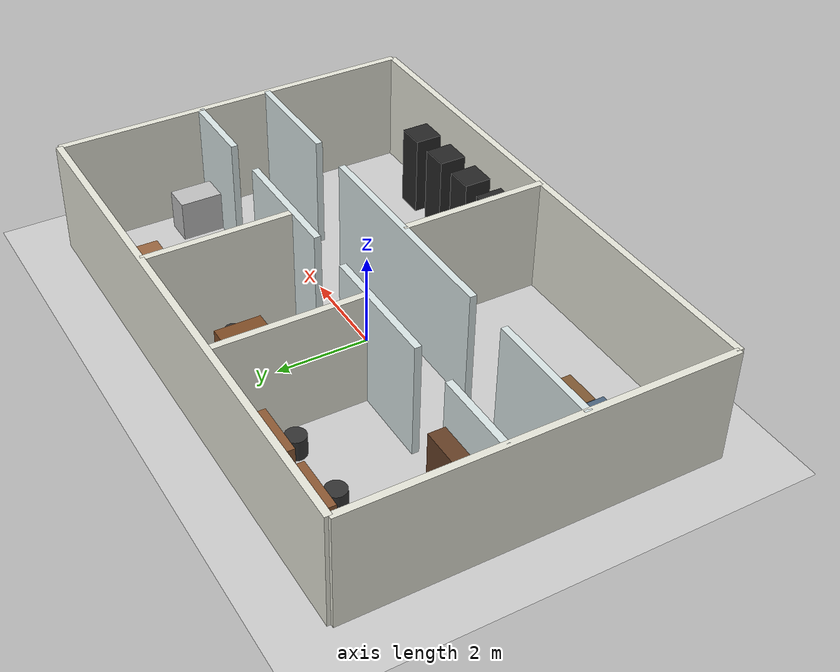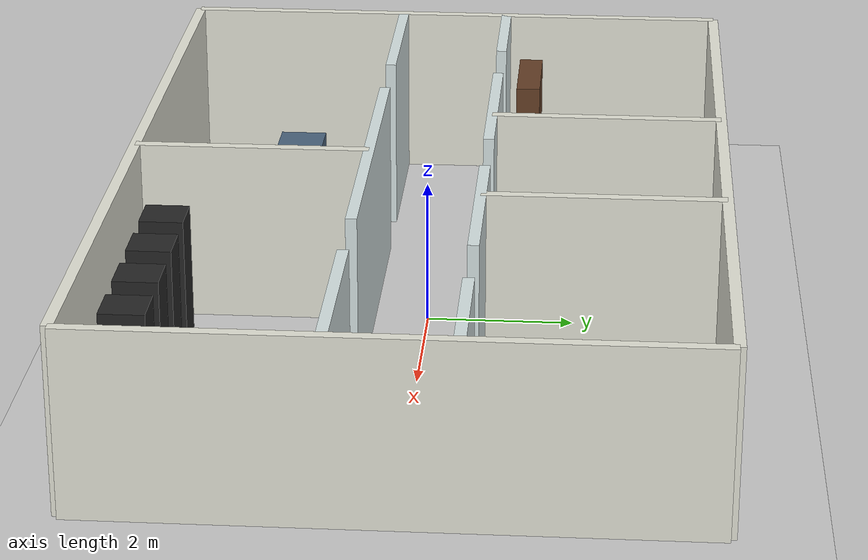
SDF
<?xml version="1.0"?>
<sdf version="1.9">
  <world name="office_world">

    <plugin filename="gz-sim-physics-system" name="gz::sim::systems::Physics"/>
    <plugin filename="gz-sim-user-commands-system" name="gz::sim::systems::UserCommands"/>
    <plugin filename="gz-sim-scene-broadcaster-system" name="gz::sim::systems::SceneBroadcaster"/>
    <plugin filename="gz-sim-sensors-system" name="gz::sim::systems::Sensors">
      <render_engine>ogre2</render_engine>
    </plugin>

    <light type="directional" name="sun">
      <cast_shadows>true</cast_shadows>
      <pose>0 0 10 0 0 0</pose>
      <diffuse>0.8 0.8 0.8 1</diffuse>
      <specular>0.2 0.2 0.2 1</specular>
      <attenuation>
        <range>1000</range>
        <constant>0.9</constant>
        <linear>0.01</linear>
        <quadratic>0.001</quadratic>
      </attenuation>
      <direction>-0.5 0.1 -0.9</direction>
    </light>

    <model name="ground_plane">
      <static>true</static>
      <link name="link">
        <collision name="collision">
          <geometry><plane><normal>0 0 1</normal><size>100 100</size></plane></geometry>
          <surface><friction><ode><mu>1.0</mu><mu2>1.0</mu2></ode></friction></surface>
        </collision>
        <visual name="visual">
          <geometry><plane><normal>0 0 1</normal><size>100 100</size></plane></geometry>
          <material><ambient>0.8 0.8 0.8 1</ambient><diffuse>0.8 0.8 0.8 1</diffuse></material>
        </visual>
      </link>
    </model>

    <!-- ===================== BUDYNEK: 12m x 8m ===================== -->
    <!-- Korytarz poziomy: y -0.8..0.8, x -6..6
         Północ (y 0.8..4): Open Space | Sala konferencyjna | Kuchnia
         Południe (y -4..-0.8): Pokój socjalny | Serwerownia -->
    <model name="walls">
      <static>true</static>

      <!-- Ściany zewnętrzne -->
      <link name="north_wall">
        <pose>0 4 1.25 0 0 0</pose>
        <collision name="collision"><geometry><box><size>12 0.15 2.5</size></box></geometry></collision>
        <visual name="visual"><geometry><box><size>12 0.15 2.5</size></box></geometry>
          <material><ambient>0.9 0.9 0.85 1</ambient><diffuse>0.9 0.9 0.85 1</diffuse></material></visual>
      </link>
      <link name="south_wall">
        <pose>0 -4 1.25 0 0 0</pose>
        <collision name="collision"><geometry><box><size>12 0.15 2.5</size></box></geometry></collision>
        <visual name="visual"><geometry><box><size>12 0.15 2.5</size></box></geometry>
          <material><ambient>0.9 0.9 0.85 1</ambient><diffuse>0.9 0.9 0.85 1</diffuse></material></visual>
      </link>
      <link name="west_wall">
        <pose>-6 0 1.25 0 0 1.5708</pose>
        <collision name="collision"><geometry><box><size>8 0.15 2.5</size></box></geometry></collision>
        <visual name="visual"><geometry><box><size>8 0.15 2.5</size></box></geometry>
          <material><ambient>0.9 0.9 0.85 1</ambient><diffuse>0.9 0.9 0.85 1</diffuse></material></visual>
      </link>
      <link name="east_wall">
        <pose>6 0 1.25 0 0 1.5708</pose>
        <collision name="collision"><geometry><box><size>8 0.15 2.5</size></box></geometry></collision>
        <visual name="visual"><geometry><box><size>8 0.15 2.5</size></box></geometry>
          <material><ambient>0.9 0.9 0.85 1</ambient><diffuse>0.9 0.9 0.85 1</diffuse></material></visual>
      </link>

      <!-- Ściana korytarza PÓŁNOC (y=0.8), z 3 drzwiami -->
      <link name="corridor_north_1">
        <pose>-5.125 0.8 1.25 0 0 0</pose>
        <collision name="collision"><geometry><box><size>1.75 0.15 2.5</size></box></geometry></collision>
        <visual name="visual"><geometry><box><size>1.75 0.15 2.5</size></box></geometry>
          <material><ambient>0.85 0.9 0.9 1</ambient><diffuse>0.85 0.9 0.9 1</diffuse></material></visual>
      </link>
      <link name="corridor_north_2">
        <pose>-1.875 0.8 1.25 0 0 0</pose>
        <collision name="collision"><geometry><box><size>2.75 0.15 2.5</size></box></geometry></collision>
        <visual name="visual"><geometry><box><size>2.75 0.15 2.5</size></box></geometry>
          <material><ambient>0.85 0.9 0.9 1</ambient><diffuse>0.85 0.9 0.9 1</diffuse></material></visual>
      </link>
      <link name="corridor_north_3">
        <pose>1.875 0.8 1.25 0 0 0</pose>
        <collision name="collision"><geometry><box><size>2.75 0.15 2.5</size></box></geometry></collision>
        <visual name="visual"><geometry><box><size>2.75 0.15 2.5</size></box></geometry>
          <material><ambient>0.85 0.9 0.9 1</ambient><diffuse>0.85 0.9 0.9 1</diffuse></material></visual>
      </link>
      <link name="corridor_north_4">
        <pose>5.125 0.8 1.25 0 0 0</pose>
        <collision name="collision"><geometry><box><size>1.75 0.15 2.5</size></box></geometry></collision>
        <visual name="visual"><geometry><box><size>1.75 0.15 2.5</size></box></geometry>
          <material><ambient>0.85 0.9 0.9 1</ambient><diffuse>0.85 0.9 0.9 1</diffuse></material></visual>
      </link>

      <!-- Ściana korytarza POŁUDNIE (y=-0.8), z 2 drzwiami -->
      <link name="corridor_south_1">
        <pose>-4.75 -0.8 1.25 0 0 0</pose>
        <collision name="collision"><geometry><box><size>2.5 0.15 2.5</size></box></geometry></collision>
        <visual name="visual"><geometry><box><size>2.5 0.15 2.5</size></box></geometry>
          <material><ambient>0.85 0.9 0.9 1</ambient><diffuse>0.85 0.9 0.9 1</diffuse></material></visual>
      </link>
      <link name="corridor_south_2">
        <pose>0 -0.8 1.25 0 0 0</pose>
        <collision name="collision"><geometry><box><size>5 0.15 2.5</size></box></geometry></collision>
        <visual name="visual"><geometry><box><size>5 0.15 2.5</size></box></geometry>
          <material><ambient>0.85 0.9 0.9 1</ambient><diffuse>0.85 0.9 0.9 1</diffuse></material></visual>
      </link>
      <link name="corridor_south_3">
        <pose>4.75 -0.8 1.25 0 0 0</pose>
        <collision name="collision"><geometry><box><size>2.5 0.15 2.5</size></box></geometry></collision>
        <visual name="visual"><geometry><box><size>2.5 0.15 2.5</size></box></geometry>
          <material><ambient>0.85 0.9 0.9 1</ambient><diffuse>0.85 0.9 0.9 1</diffuse></material></visual>
      </link>

      <!-- Ściany działowe między pomieszczeniami (strona północna) -->
      <link name="wall_office_meeting">
        <pose>-1.5 2.4 1.25 0 0 1.5708</pose>
        <collision name="collision"><geometry><box><size>3.2 0.15 2.5</size></box></geometry></collision>
        <visual name="visual"><geometry><box><size>3.2 0.15 2.5</size></box></geometry>
          <material><ambient>0.9 0.9 0.85 1</ambient><diffuse>0.9 0.9 0.85 1</diffuse></material></visual>
      </link>
      <link name="wall_meeting_kitchen">
        <pose>1.5 2.4 1.25 0 0 1.5708</pose>
        <collision name="collision"><geometry><box><size>3.2 0.15 2.5</size></box></geometry></collision>
        <visual name="visual"><geometry><box><size>3.2 0.15 2.5</size></box></geometry>
          <material><ambient>0.9 0.9 0.85 1</ambient><diffuse>0.9 0.9 0.85 1</diffuse></material></visual>
      </link>

      <!-- Ściana działowa strona południowa -->
      <link name="wall_break_server">
        <pose>0 -2.4 1.25 0 0 1.5708</pose>
        <collision name="collision"><geometry><box><size>3.2 0.15 2.5</size></box></geometry></collision>
        <visual name="visual"><geometry><box><size>3.2 0.15 2.5</size></box></geometry>
          <material><ambient>0.9 0.9 0.85 1</ambient><diffuse>0.9 0.9 0.85 1</diffuse></material></visual>
      </link>

    </model>

    <!-- ===================== OPEN SPACE (x -6..-1.5, y 0.8..4) ===================== -->
    <model name="desk_1"><static>true</static><pose>-5.3 3.3 0.375 0 0 0</pose>
      <link name="link"><collision name="collision"><geometry><box><size>1.2 0.6 0.75</size></box></geometry></collision>
        <visual name="visual"><geometry><box><size>1.2 0.6 0.75</size></box></geometry><material><ambient>0.55 0.35 0.2 1</ambient><diffuse>0.55 0.35 0.2 1</diffuse></material></visual></link>
    </model>
    <model name="chair_1"><static>true</static><pose>-5.3 2.7 0.225 0 0 0</pose>
      <link name="link"><collision name="collision"><geometry><cylinder><radius>0.22</radius><length>0.45</length></cylinder></geometry></collision>
        <visual name="visual"><geometry><cylinder><radius>0.22</radius><length>0.45</length></cylinder></geometry><material><ambient>0.2 0.2 0.2 1</ambient><diffuse>0.2 0.2 0.2 1</diffuse></material></visual></link>
    </model>
    <model name="desk_2"><static>true</static><pose>-3.75 3.3 0.375 0 0 0</pose>
      <link name="link"><collision name="collision"><geometry><box><size>1.2 0.6 0.75</size></box></geometry></collision>
        <visual name="visual"><geometry><box><size>1.2 0.6 0.75</size></box></geometry><material><ambient>0.55 0.35 0.2 1</ambient><diffuse>0.55 0.35 0.2 1</diffuse></material></visual></link>
    </model>
    <model name="chair_2"><static>true</static><pose>-3.75 2.7 0.225 0 0 0</pose>
      <link name="link"><collision name="collision"><geometry><cylinder><radius>0.22</radius><length>0.45</length></cylinder></geometry></collision>
        <visual name="visual"><geometry><cylinder><radius>0.22</radius><length>0.45</length></cylinder></geometry><material><ambient>0.2 0.2 0.2 1</ambient><diffuse>0.2 0.2 0.2 1</diffuse></material></visual></link>
    </model>
    <model name="desk_3"><static>true</static><pose>-2.2 3.3 0.375 0 0 0</pose>
      <link name="link"><collision name="collision"><geometry><box><size>1.2 0.6 0.75</size></box></geometry></collision>
        <visual name="visual"><geometry><box><size>1.2 0.6 0.75</size></box></geometry><material><ambient>0.55 0.35 0.2 1</ambient><diffuse>0.55 0.35 0.2 1</diffuse></material></visual></link>
    </model>
    <model name="chair_3"><static>true</static><pose>-2.2 2.7 0.225 0 0 0</pose>
      <link name="link"><collision name="collision"><geometry><cylinder><radius>0.22</radius><length>0.45</length></cylinder></geometry></collision>
        <visual name="visual"><geometry><cylinder><radius>0.22</radius><length>0.45</length></cylinder></geometry><material><ambient>0.2 0.2 0.2 1</ambient><diffuse>0.2 0.2 0.2 1</diffuse></material></visual></link>
    </model>
    <model name="bookshelf"><static>true</static><pose>-5.3 1.2 0.9 0 0 0</pose>
      <link name="link"><collision name="collision"><geometry><box><size>1.5 0.35 1.8</size></box></geometry></collision>
        <visual name="visual"><geometry><box><size>1.5 0.35 1.8</size></box></geometry><material><ambient>0.4 0.25 0.15 1</ambient><diffuse>0.4 0.25 0.15 1</diffuse></material></visual></link>
    </model>

    <!-- ===================== SALA KONFERENCYJNA (x -1.5..1.5, y 0.8..4) ===================== -->
    <model name="meeting_table"><static>true</static><pose>0 2.4 0.375 0 0 0</pose>
      <link name="link"><collision name="collision"><geometry><box><size>1.8 1.0 0.75</size></box></geometry></collision>
        <visual name="visual"><geometry><box><size>1.8 1.0 0.75</size></box></geometry><material><ambient>0.5 0.3 0.15 1</ambient><diffuse>0.5 0.3 0.15 1</diffuse></material></visual></link>
    </model>
    <model name="meeting_chair_1"><static>true</static><pose>0 3.1 0.225 0 0 0</pose>
      <link name="link"><collision name="collision"><geometry><cylinder><radius>0.2</radius><length>0.45</length></cylinder></geometry></collision>
        <visual name="visual"><geometry><cylinder><radius>0.2</radius><length>0.45</length></cylinder></geometry><material><ambient>0.2 0.2 0.2 1</ambient><diffuse>0.2 0.2 0.2 1</diffuse></material></visual></link>
    </model>
    <model name="meeting_chair_2"><static>true</static><pose>0 1.7 0.225 0 0 0</pose>
      <link name="link"><collision name="collision"><geometry><cylinder><radius>0.2</radius><length>0.45</length></cylinder></geometry></collision>
        <visual name="visual"><geometry><cylinder><radius>0.2</radius><length>0.45</length></cylinder></geometry><material><ambient>0.2 0.2 0.2 1</ambient><diffuse>0.2 0.2 0.2 1</diffuse></material></visual></link>
    </model>
    <model name="meeting_chair_3"><static>true</static><pose>-1.1 2.4 0.225 0 0 0</pose>
      <link name="link"><collision name="collision"><geometry><cylinder><radius>0.2</radius><length>0.45</length></cylinder></geometry></collision>
        <visual name="visual"><geometry><cylinder><radius>0.2</radius><length>0.45</length></cylinder></geometry><material><ambient>0.2 0.2 0.2 1</ambient><diffuse>0.2 0.2 0.2 1</diffuse></material></visual></link>
    </model>
    <model name="meeting_chair_4"><static>true</static><pose>1.1 2.4 0.225 0 0 0</pose>
      <link name="link"><collision name="collision"><geometry><cylinder><radius>0.2</radius><length>0.45</length></cylinder></geometry></collision>
        <visual name="visual"><geometry><cylinder><radius>0.2</radius><length>0.45</length></cylinder></geometry><material><ambient>0.2 0.2 0.2 1</ambient><diffuse>0.2 0.2 0.2 1</diffuse></material></visual></link>
    </model>

    <!-- ===================== KUCHNIA (x 1.5..6, y 0.8..4) ===================== -->
    <model name="kitchen_table"><static>true</static><pose>3.75 3.2 0.375 0 0 0</pose>
      <link name="link"><collision name="collision"><geometry><box><size>1.0 1.0 0.75</size></box></geometry></collision>
        <visual name="visual"><geometry><box><size>1.0 1.0 0.75</size></box></geometry><material><ambient>0.6 0.4 0.25 1</ambient><diffuse>0.6 0.4 0.25 1</diffuse></material></visual></link>
    </model>
    <model name="kitchen_chair_1"><static>true</static><pose>3.15 3.2 0.225 0 0 0</pose>
      <link name="link"><collision name="collision"><geometry><cylinder><radius>0.2</radius><length>0.45</length></cylinder></geometry></collision>
        <visual name="visual"><geometry><cylinder><radius>0.2</radius><length>0.45</length></cylinder></geometry><material><ambient>0.2 0.2 0.2 1</ambient><diffuse>0.2 0.2 0.2 1</diffuse></material></visual></link>
    </model>
    <model name="kitchen_chair_2"><static>true</static><pose>4.35 3.2 0.225 0 0 0</pose>
      <link name="link"><collision name="collision"><geometry><cylinder><radius>0.2</radius><length>0.45</length></cylinder></geometry></collision>
        <visual name="visual"><geometry><cylinder><radius>0.2</radius><length>0.45</length></cylinder></geometry><material><ambient>0.2 0.2 0.2 1</ambient><diffuse>0.2 0.2 0.2 1</diffuse></material></visual></link>
    </model>
    <model name="kitchen_counter"><static>true</static><pose>5.3 1.3 0.45 0 0 0</pose>
      <link name="link"><collision name="collision"><geometry><box><size>0.6 1.0 0.9</size></box></geometry></collision>
        <visual name="visual"><geometry><box><size>0.6 1.0 0.9</size></box></geometry><material><ambient>0.75 0.75 0.75 1</ambient><diffuse>0.75 0.75 0.75 1</diffuse></material></visual></link>
    </model>

    <!-- ===================== POKÓJ SOCJALNY (x -6..0, y -4..-0.8) ===================== -->
    <model name="sofa"><static>true</static><pose>-5.0 -2.4 0.25 0 0 0</pose>
      <link name="link"><collision name="collision"><geometry><box><size>1.8 0.7 0.5</size></box></geometry></collision>
        <visual name="visual"><geometry><box><size>1.8 0.7 0.5</size></box></geometry><material><ambient>0.3 0.4 0.5 1</ambient><diffuse>0.3 0.4 0.5 1</diffuse></material></visual></link>
    </model>
    <model name="coffee_table"><static>true</static><pose>-3.6 -2.4 0.2 0 0 0</pose>
      <link name="link"><collision name="collision"><geometry><box><size>0.8 0.5 0.4</size></box></geometry></collision>
        <visual name="visual"><geometry><box><size>0.8 0.5 0.4</size></box></geometry><material><ambient>0.5 0.35 0.2 1</ambient><diffuse>0.5 0.35 0.2 1</diffuse></material></visual></link>
    </model>
    <model name="vending_machine"><static>true</static><pose>-0.6 -1.2 0.6 0 0 0</pose>
      <link name="link"><collision name="collision"><geometry><box><size>0.7 0.7 1.2</size></box></geometry></collision>
        <visual name="visual"><geometry><box><size>0.7 0.7 1.2</size></box></geometry><material><ambient>0.8 0.1 0.1 1</ambient><diffuse>0.8 0.1 0.1 1</diffuse></material></visual></link>
    </model>

    <!-- ===================== SERWEROWNIA (x 0..6, y -4..-0.8) ===================== -->
    <model name="server_rack_1"><static>true</static><pose>0.8 -3.5 0.9 0 0 0</pose>
      <link name="link"><collision name="collision"><geometry><box><size>0.6 0.6 1.8</size></box></geometry></collision>
        <visual name="visual"><geometry><box><size>0.6 0.6 1.8</size></box></geometry><material><ambient>0.15 0.15 0.15 1</ambient><diffuse>0.15 0.15 0.15 1</diffuse></material></visual></link>
    </model>
    <model name="server_rack_2"><static>true</static><pose>1.8 -3.5 0.9 0 0 0</pose>
      <link name="link"><collision name="collision"><geometry><box><size>0.6 0.6 1.8</size></box></geometry></collision>
        <visual name="visual"><geometry><box><size>0.6 0.6 1.8</size></box></geometry><material><ambient>0.15 0.15 0.15 1</ambient><diffuse>0.15 0.15 0.15 1</diffuse></material></visual></link>
    </model>
    <model name="server_rack_3"><static>true</static><pose>2.8 -3.5 0.9 0 0 0</pose>
      <link name="link"><collision name="collision"><geometry><box><size>0.6 0.6 1.8</size></box></geometry></collision>
        <visual name="visual"><geometry><box><size>0.6 0.6 1.8</size></box></geometry><material><ambient>0.15 0.15 0.15 1</ambient><diffuse>0.15 0.15 0.15 1</diffuse></material></visual></link>
    </model>
    <model name="server_rack_4"><static>true</static><pose>3.8 -3.5 0.9 0 0 0</pose>
      <link name="link"><collision name="collision"><geometry><box><size>0.6 0.6 1.8</size></box></geometry></collision>
        <visual name="visual"><geometry><box><size>0.6 0.6 1.8</size></box></geometry><material><ambient>0.15 0.15 0.15 1</ambient><diffuse>0.15 0.15 0.15 1</diffuse></material></visual></link>
    </model>

    <physics name="1ms" type="ode">
      <max_step_size>0.001</max_step_size>
      <real_time_factor>1.0</real_time_factor>
      <real_time_update_rate>1000</real_time_update_rate>
    </physics>

    <gravity>0 0 -9.8</gravity>

  </world>
</sdf>
